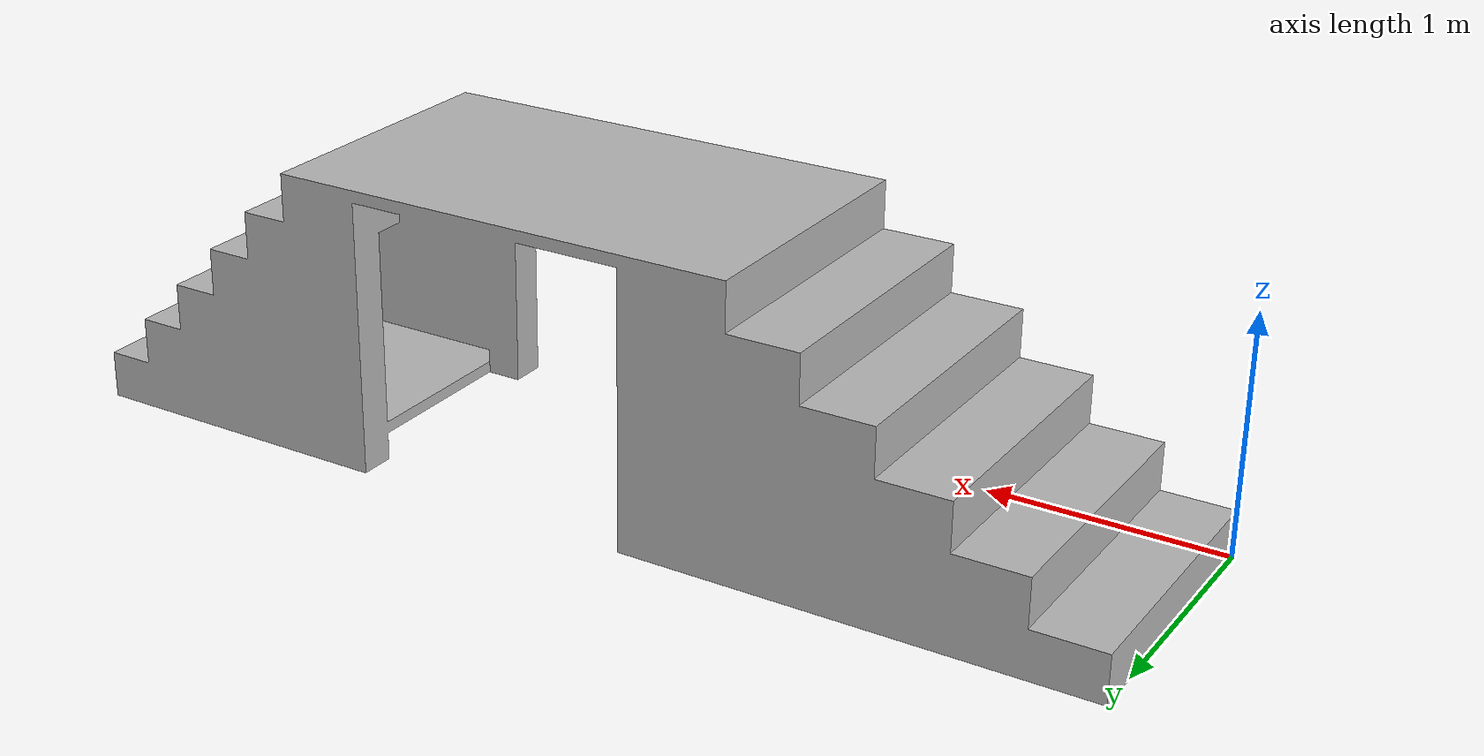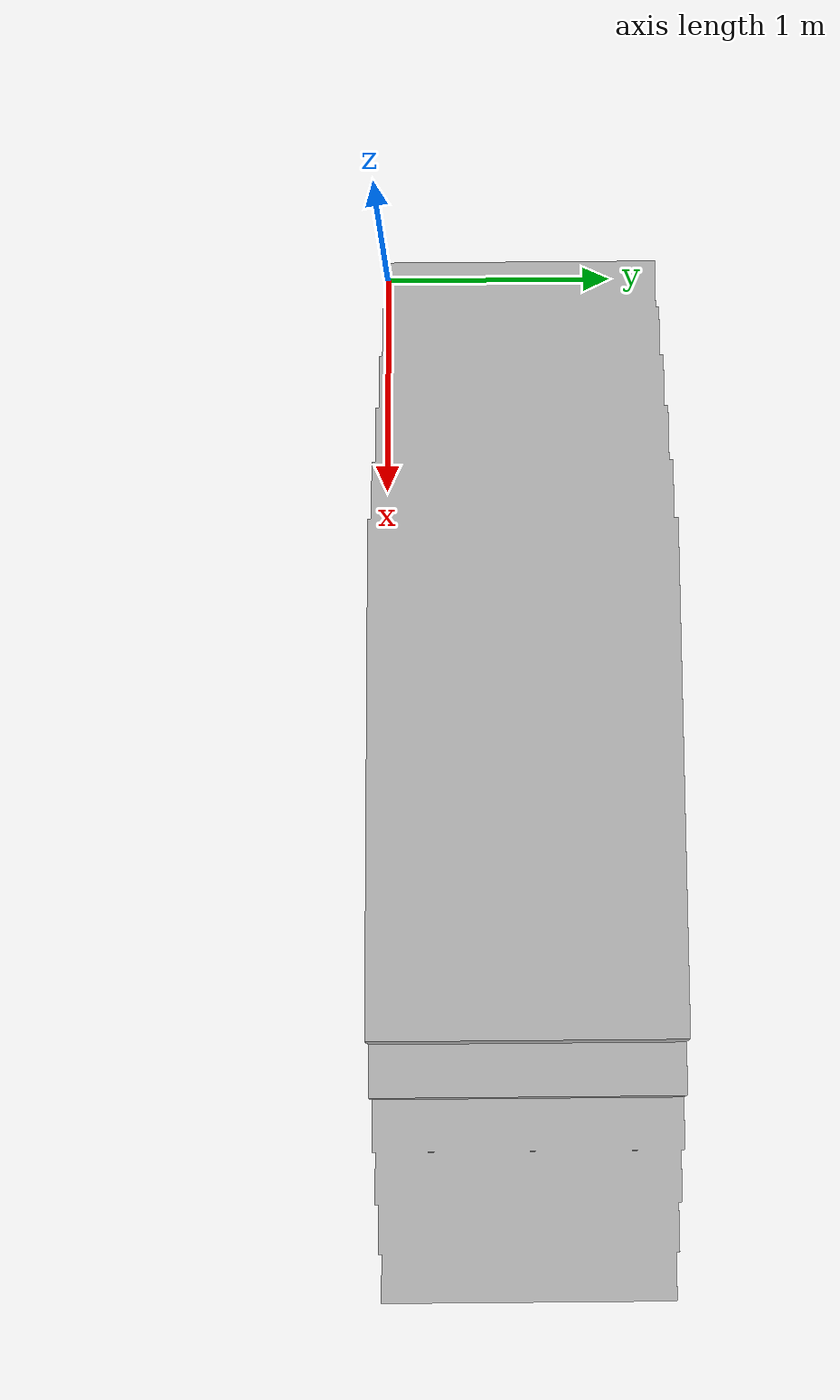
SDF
<?xml version='1.0'?>
<sdf version='1.6'>
  <model name='terrain-stairs_3'>
    <static>true</static>
    <link name='base_link'>
      <pose frame=''>0 0 0 0 -0 0</pose>
      <inertial>
        <pose frame=''>2.2629 0.6 0.52003 0 -0 0</pose>
        <mass>401.61</mass>
        <inertia>
          <ixx>129.02</ixx>
          <ixy>-1.6771e-14</ixy>
          <ixz>-8.2107</ixz>
          <iyy>148.29</iyy>
          <iyz>2.5122e-15</iyz>
          <izz>164.47</izz>
        </inertia>
      </inertial>
      <collision name='base_link_collision'>
        <pose frame=''>0 0 0 0 -0 0</pose>
        <geometry>
          <mesh>
            <scale>1 1 1</scale>
            <uri>model://terrain-stairs_3/meshes/base_link.STL</uri>
          </mesh>
        </geometry>
        <surface>
          <contact>
            <collide_bitmask>65535</collide_bitmask>
            <ode/>
          </contact>
          <friction>
            <ode>
              <mu>2</mu>
              <mu2>2</mu2>
            </ode>
            <torsional>
              <ode/>
            </torsional>
          </friction>
          <bounce/>
        </surface>
      </collision>
      <visual name='base_link_visual'>
        <pose frame=''>0 0 0 0 -0 0</pose>
        <geometry>
          <mesh>
            <scale>1 1 1</scale>
            <uri>model://terrain-stairs_3/meshes/base_link.dae</uri>
          </mesh>
        </geometry>
      </visual>
    </link>
  </model>
</sdf>
